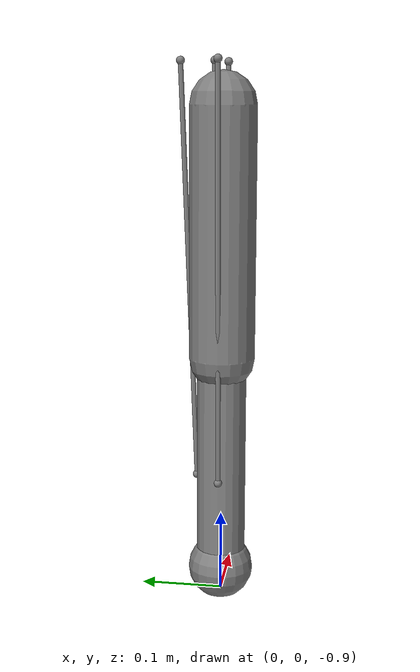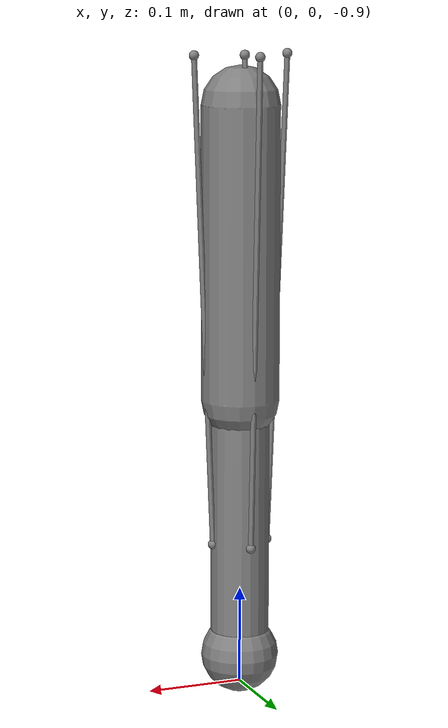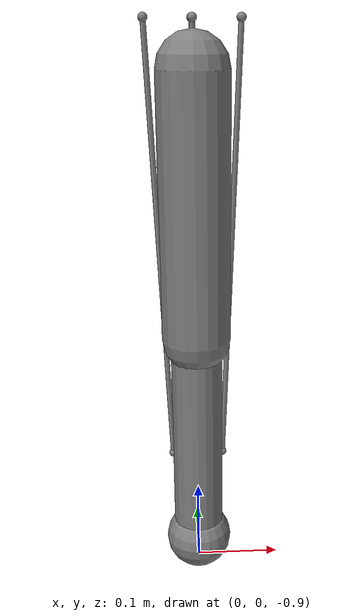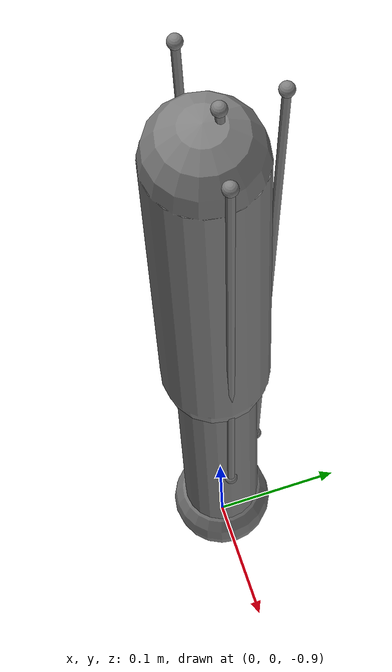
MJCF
<mujoco model="arm_9muscles">
  <option timestep="0.002" iterations="50" solver="Newton"
          integrator="implicit" cone="elliptic"/>

  <default>
    <muscle ctrllimited="true" ctrlrange="0 1"
            force="-1" scale="200" lmin="0.5" lmax="1.6"
            vmax="10" fpmax="1.5" fvmax="1.4"/>
  </default>

  <worldbody>
    <body name="humerus" pos="0 0 -0.3">
      <joint name="shoulder_flex" type="hinge" axis="0 1 0" range="-0.5 2.5" damping="0.1"/>
      <joint name="shoulder_abd"  type="hinge" axis="1 0 0" range="-0.5 2.5" damping="0.1"/>
      <joint name="shoulder_rot"  type="hinge" axis="0 0 1" range="-1.5 1.5" damping="0.1"/>
      <geom type="capsule" fromto="0 0 0 0 0 -0.3" size="0.04" mass="1.98"/>

      <!-- Muscle origin sites on humerus -->
      <site name="bic_origin_long"  pos="0    0.01  0.05"/>
      <site name="bic_s_origin"     pos="0.01 0.01  0.03"/>
      <site name="bra_origin"       pos="0    0.00 -0.15"/>
      <site name="tri_l_origin"     pos="0   -0.01  0.02"/>
      <site name="delt_a_origin"    pos="0.05 0.00  0.05"/>
      <site name="delt_m_origin"    pos="0.00 0.05  0.05"/>
      <site name="delt_p_origin"    pos="-0.05 0.00 0.05"/>

      <body name="radius" pos="0 0 -0.3">
        <joint name="elbow_flex" type="hinge" axis="0 1 0" range="0 2.7" damping="0.1"/>
        <geom type="capsule" fromto="0 0 0 0 0 -0.27" size="0.03" mass="1.18"/>

        <!-- Via / insertion sites on forearm -->
        <site name="bic_via_1"        pos="0    0.02 -0.02"/>
        <site name="bic_insertion"    pos="0    0.02 -0.08"/>
        <site name="bic_s_insertion"  pos="0    0.02 -0.08"/>
        <site name="bra_insertion"    pos="0    0.01 -0.05"/>
        <site name="tri_l_insertion"  pos="0   -0.01 -0.01"/>
        <site name="tri_la_origin"    pos="0.01 -0.01 -0.10"/>
        <site name="tri_la_insertion" pos="0   -0.01 -0.01"/>
        <site name="tri_m_origin"     pos="-0.01 -0.01 -0.10"/>
        <site name="tri_m_insertion"  pos="0   -0.01 -0.01"/>
        <site name="delt_a_insertion" pos="0.03 0.00 -0.15"/>
        <site name="delt_m_insertion" pos="0.00 0.03 -0.15"/>
        <site name="delt_p_insertion" pos="-0.03 0.00 -0.15"/>

        <body name="hand" pos="0 0 -0.27">
          <geom type="sphere" size="0.04" mass="0.45"/>
          <site name="end_effector" pos="0 0 0"/>
        </body>
      </body>
    </body>
  </worldbody>

  <tendon>
    <spatial name="biceps_long"  width="0.003">
      <site site="bic_origin_long"/>
      <site site="bic_via_1"/>
      <site site="bic_insertion"/>
    </spatial>
    <spatial name="biceps_short" width="0.003">
      <site site="bic_s_origin"/>
      <site site="bic_s_insertion"/>
    </spatial>
    <spatial name="brachialis"   width="0.003">
      <site site="bra_origin"/>
      <site site="bra_insertion"/>
    </spatial>
    <spatial name="triceps_long" width="0.003">
      <site site="tri_l_origin"/>
      <site site="tri_l_insertion"/>
    </spatial>
    <spatial name="triceps_lat"  width="0.003">
      <site site="tri_la_origin"/>
      <site site="tri_la_insertion"/>
    </spatial>
    <spatial name="triceps_med"  width="0.003">
      <site site="tri_m_origin"/>
      <site site="tri_m_insertion"/>
    </spatial>
    <spatial name="deltoid_ant"  width="0.003">
      <site site="delt_a_origin"/>
      <site site="delt_a_insertion"/>
    </spatial>
    <spatial name="deltoid_med"  width="0.003">
      <site site="delt_m_origin"/>
      <site site="delt_m_insertion"/>
    </spatial>
    <spatial name="deltoid_post" width="0.003">
      <site site="delt_p_origin"/>
      <site site="delt_p_insertion"/>
    </spatial>
  </tendon>

  <actuator>
    <muscle name="biceps_long"  tendon="biceps_long"  force="624"  lengthrange="0.01 0.50"/>
    <muscle name="biceps_short" tendon="biceps_short" force="435"  lengthrange="0.01 0.50"/>
    <muscle name="brachialis"   tendon="brachialis"   force="987"  lengthrange="0.01 0.50"/>
    <muscle name="triceps_long" tendon="triceps_long" force="798"  lengthrange="0.01 0.50"/>
    <muscle name="triceps_lat"  tendon="triceps_lat"  force="624"  lengthrange="0.01 0.50"/>
    <muscle name="triceps_med"  tendon="triceps_med"  force="624"  lengthrange="0.01 0.50"/>
    <muscle name="deltoid_ant"  tendon="deltoid_ant"  force="1142" lengthrange="0.01 0.50"/>
    <muscle name="deltoid_med"  tendon="deltoid_med"  force="1142" lengthrange="0.01 0.50"/>
    <muscle name="deltoid_post" tendon="deltoid_post" force="259"  lengthrange="0.01 0.50"/>
  </actuator>

  <sensor>
    <actuatorfrc name="f_bl"  actuator="biceps_long"/>
    <actuatorfrc name="f_bs"  actuator="biceps_short"/>
    <actuatorfrc name="f_bra" actuator="brachialis"/>
    <actuatorfrc name="f_tl"  actuator="triceps_long"/>
    <actuatorfrc name="f_tla" actuator="triceps_lat"/>
    <actuatorfrc name="f_tm"  actuator="triceps_med"/>
    <actuatorfrc name="f_da"  actuator="deltoid_ant"/>
    <actuatorfrc name="f_dm"  actuator="deltoid_med"/>
    <actuatorfrc name="f_dp"  actuator="deltoid_post"/>
    <jointpos name="shf_q" joint="shoulder_flex"/>
    <jointvel name="shf_v" joint="shoulder_flex"/>
  </sensor>
</mujoco>
